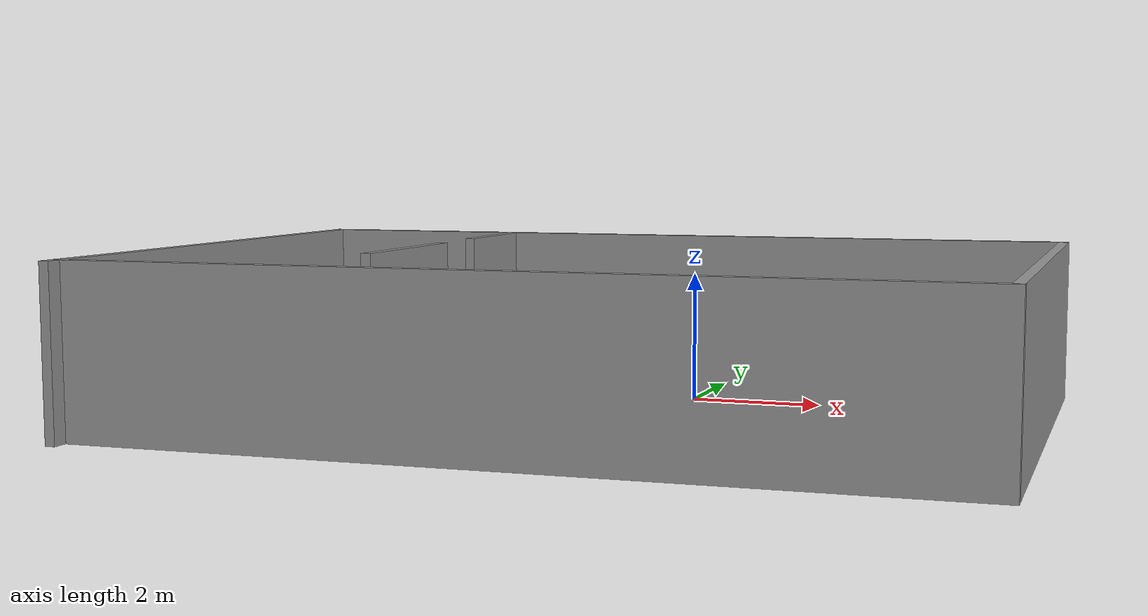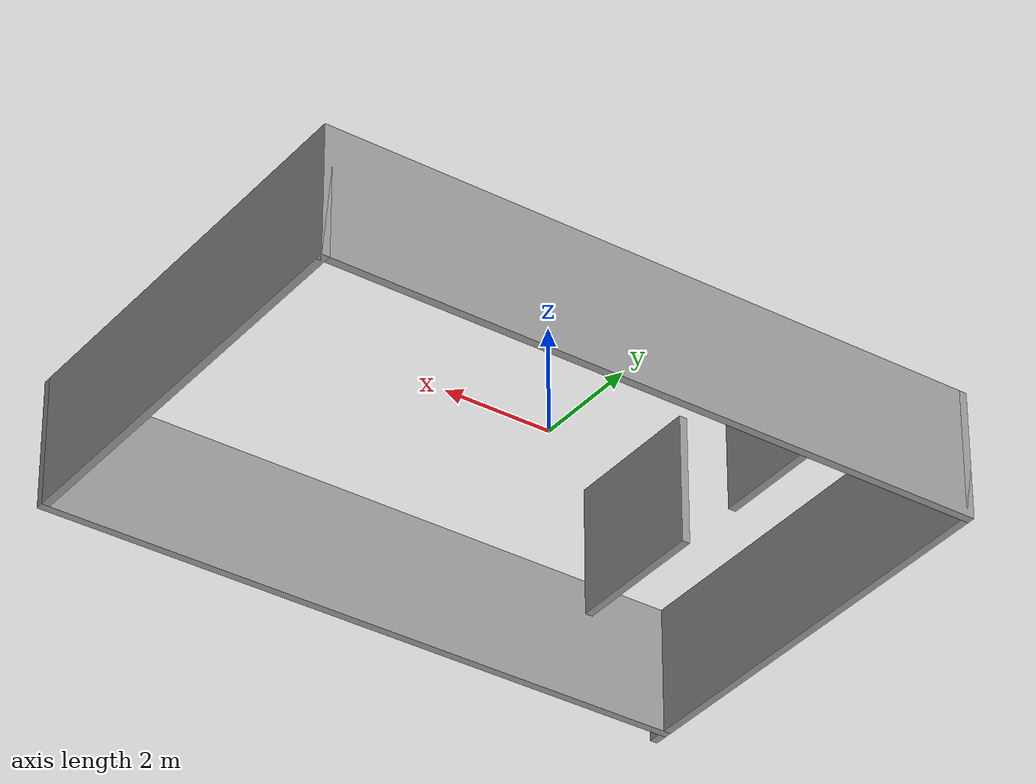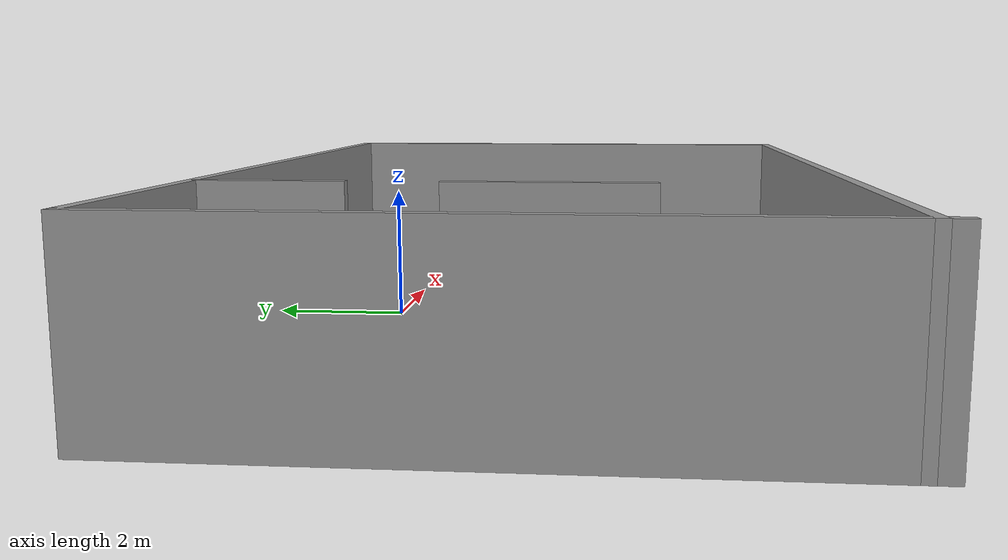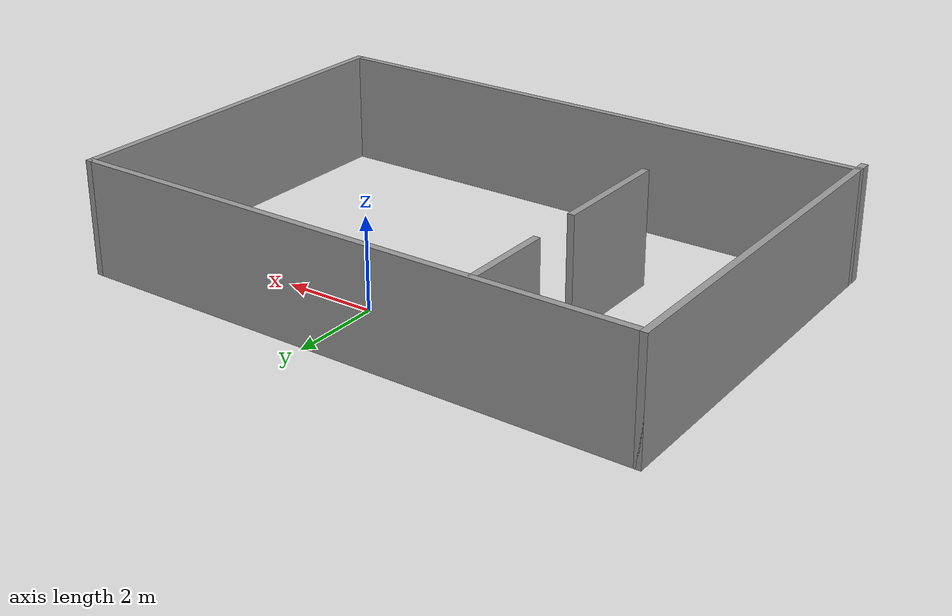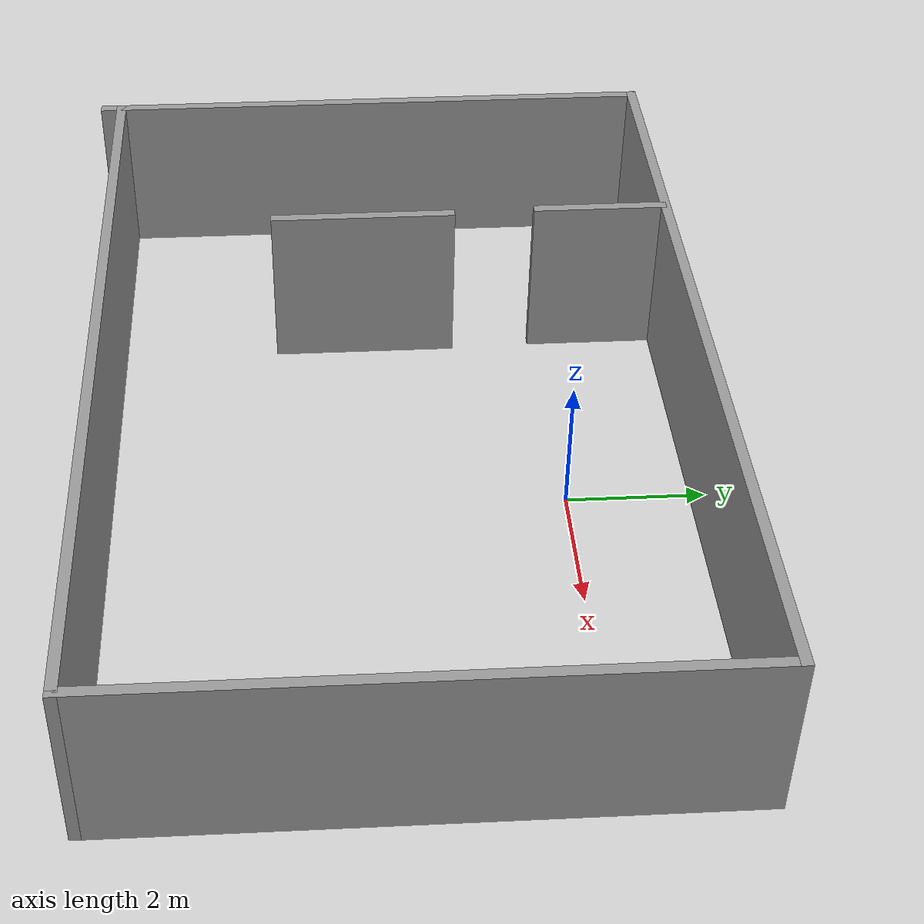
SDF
<?xml version='1.0'?>
<sdf version='1.6'>
  <model name='dom1'>
    <pose frame=''>-0.80079 -2.45878 0 0 -0 0</pose>
    <link name='Wall_10'>
      <collision name='Wall_10_Collision'>
        <geometry>
          <box>
            <size>8.75 0.15 2.5</size>
          </box>
        </geometry>
        <pose frame=''>0 0 1.25 0 -0 0</pose>
      </collision>
      <visual name='Wall_10_Visual'>
        <pose frame=''>0 0 1.25 0 -0 0</pose>
        <geometry>
          <box>
            <size>8.75 0.15 2.5</size>
          </box>
        </geometry>
        <material>
          <script>
            <uri>file://media/materials/scripts/gazebo.material</uri>
            <name>Gazebo/Grey</name>
          </script>
          <ambient>1 1 1 1</ambient>
        </material>
        <meta>
          <layer>0</layer>
        </meta>
      </visual>
      <pose frame=''>-6.3 -0 0 0 -0 1.5708</pose>
    </link>
    <link name='Wall_11'>
      <collision name='Wall_11_Collision'>
        <geometry>
          <box>
            <size>12.75 0.15 2.5</size>
          </box>
        </geometry>
        <pose frame=''>0 0 1.25 0 -0 0</pose>
      </collision>
      <visual name='Wall_11_Visual'>
        <pose frame=''>0 0 1.25 0 -0 0</pose>
        <geometry>
          <box>
            <size>12.75 0.15 2.5</size>
          </box>
        </geometry>
        <material>
          <script>
            <uri>file://media/materials/scripts/gazebo.material</uri>
            <name>Gazebo/Grey</name>
          </script>
          <ambient>1 1 1 1</ambient>
        </material>
        <meta>
          <layer>0</layer>
        </meta>
      </visual>
      <pose frame=''>0 4.3 0 0 -0 0</pose>
    </link>
    <link name='Wall_12'>
      <collision name='Wall_12_Collision'>
        <geometry>
          <box>
            <size>8.5 0.15 2.5</size>
          </box>
        </geometry>
        <pose frame=''>0 0 1.25 0 -0 0</pose>
      </collision>
      <visual name='Wall_12_Visual'>
        <pose frame=''>0 0 1.25 0 -0 0</pose>
        <geometry>
          <box>
            <size>8.5 0.15 2.5</size>
          </box>
        </geometry>
        <material>
          <script>
            <uri>file://media/materials/scripts/gazebo.material</uri>
            <name>Gazebo/Grey</name>
          </script>
          <ambient>1 1 1 1</ambient>
        </material>
        <meta>
          <layer>0</layer>
        </meta>
      </visual>
      <pose frame=''>6.3 0.125 0 0 -0 -1.5708</pose>
    </link>
    <link name='Wall_13'>
      <collision name='Wall_13_Collision'>
        <geometry>
          <box>
            <size>12.75 0.15 2.5</size>
          </box>
        </geometry>
        <pose frame=''>0 0 1.25 0 -0 0</pose>
      </collision>
      <visual name='Wall_13_Visual'>
        <pose frame=''>0 0 1.25 0 -0 0</pose>
        <geometry>
          <box>
            <size>12.75 0.15 2.5</size>
          </box>
        </geometry>
        <material>
          <script>
            <uri>file://media/materials/scripts/gazebo.material</uri>
            <name>Gazebo/Grey</name>
          </script>
          <ambient>1 1 1 1</ambient>
        </material>
        <meta>
          <layer>0</layer>
        </meta>
      </visual>
      <pose frame=''>0 -4.05 0 0 -0 3.14159</pose>
    </link>
    <link name='Wall_15'>
      <collision name='Wall_15_Collision'>
        <geometry>
          <box>
            <size>2 0.15 2.5</size>
          </box>
        </geometry>
        <pose frame=''>0 0 1.25 0 -0 0</pose>
      </collision>
      <visual name='Wall_15_Visual'>
        <pose frame=''>0 0 1.25 0 -0 0</pose>
        <geometry>
          <box>
            <size>2 0.15 2.5</size>
          </box>
        </geometry>
        <material>
          <script>
            <uri>file://media/materials/scripts/gazebo.material</uri>
            <name>Gazebo/Grey</name>
          </script>
          <ambient>1 1 1 1</ambient>
        </material>
        <meta>
          <layer>0</layer>
        </meta>
      </visual>
      <pose frame=''>-2.96919 3.31019 0 0 -0 -1.5708</pose>
    </link>
    <link name='Wall_17'>
      <collision name='Wall_17_Collision'>
        <geometry>
          <box>
            <size>2.75 0.15 2.5</size>
          </box>
        </geometry>
        <pose frame=''>0 0 1.25 0 -0 0</pose>
      </collision>
      <visual name='Wall_17_Visual'>
        <pose frame=''>0 0 1.25 0 -0 0</pose>
        <geometry>
          <box>
            <size>2.75 0.15 2.5</size>
          </box>
        </geometry>
        <material>
          <script>
            <uri>file://media/materials/scripts/gazebo.material</uri>
            <name>Gazebo/Grey</name>
          </script>
          <ambient>1 1 1 1</ambient>
        </material>
        <meta>
          <layer>0</layer>
        </meta>
      </visual>
      <pose frame=''>-2.92293 -0.25683 0 0 -0 -1.5708</pose>
    </link>
    <static>1</static>
  </model>
</sdf>
